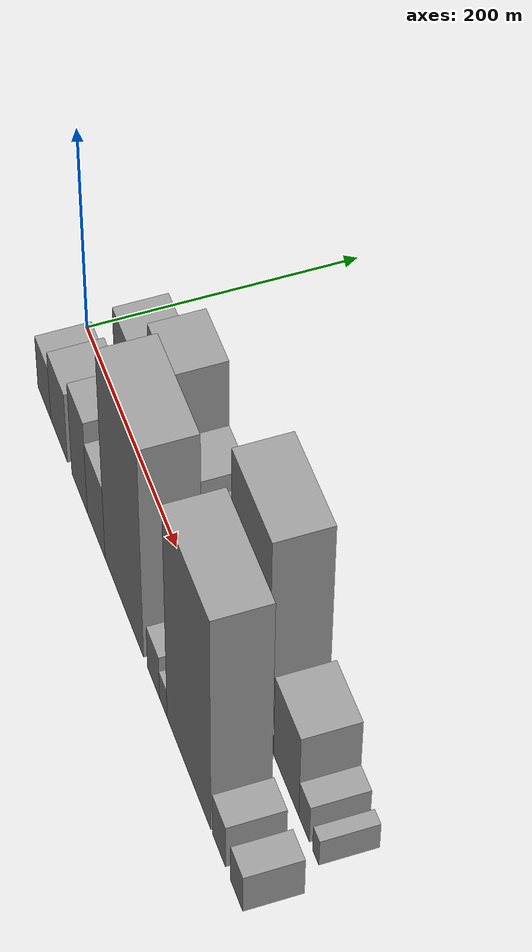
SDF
<sdf version="1.6">
 <world name="default">
  <scene>
   <sky><clouds><speed>12</speed></clouds></sky>
   <ambient>0.4 0.4 0.4 1</ambient>
   <background>0.7 0.7 0.7 1</background>
   <shadows>1</shadows>
  </scene>
  <gravity>0 0 -9.8066</gravity>
  <magnetic_field>6e-06 2.3e-05 -4.2e-05</magnetic_field>
  <physics default="0" name="default_physics" type="ode">
   <ode>
    <solver>
     <type>quick</type>
     <iters>10</iters>
     <sor>1.0</sor>
     <use_dynamic_moi_rescaling>0</use_dynamic_moi_rescaling>
    </solver>
    <constraints>
     <cfm>0</cfm>
     <erp>0.2</erp>
     <contact_max_correcting_vel>100</contact_max_correcting_vel>
     <contact_surface_layer>0.001</contact_surface_layer>
    </constraints>
   </ode>
   <max_step_size>0.004</max_step_size>
   <real_time_factor>1</real_time_factor>
   <real_time_update_rate>250</real_time_update_rate>
  </physics>
  <light name="sun" type="directional">
   <pose>0 0 10 0 0 0</pose>
   <diffuse>0.8 0.8 0.8 1</diffuse>
   <specular>0.2 0.2 0.2 1</specular>
   <attenuation>
    <range>1000</range>
    <constant>0.9</constant>
    <linear>0.01</linear>
    <quadratic>0.001</quadratic>
   </attenuation>
   <direction>-0.5 0.1 -0.9</direction>
  </light>
  <model name="building_1">
   <static>1</static>
   <pose>55.9267 27.5000 0 0.000000 0.000000 1.570796</pose>
   <link name="link">
    <pose>0 0 31.50 0 0 0</pose>
    <collision name="collision"><geometry><box><size>40.0000 31.8534 63.0000</size></box></geometry></collision>
    <visual name="visual">
     <cast_shadows>0</cast_shadows>
     <geometry><box><size>40.0000 31.8534 63.0000</size></box></geometry>
     <material>
      <script>
       <uri>model://grey_wall/materials/scripts</uri>
       <uri>model://grey_wall/materials/textures</uri>
       <name>vrc/grey_wall</name>
      </script>
     </material>
    </visual>
   </link>
  </model>
  <model name="building_2">
   <static>1</static>
   <pose>90.5737 27.5000 0 0.000000 0.000000 1.570796</pose>
   <link name="link">
    <pose>0 0 27.00 0 0 0</pose>
    <collision name="collision"><geometry><box><size>40.0000 29.4405 54.0000</size></box></geometry></collision>
    <visual name="visual">
     <cast_shadows>0</cast_shadows>
     <geometry><box><size>40.0000 29.4405 54.0000</size></box></geometry>
     <material>
      <script>
       <uri>model://grey_wall/materials/scripts</uri>
       <uri>model://grey_wall/materials/textures</uri>
       <name>vrc/grey_wall</name>
      </script>
     </material>
    </visual>
   </link>
  </model>
  <model name="building_3">
   <static>1</static>
   <pose>118.4894 27.5000 0 0.000000 0.000000 1.570796</pose>
   <link name="link">
    <pose>0 0 7.50 0 0 0</pose>
    <collision name="collision"><geometry><box><size>40.0000 6.3909 15.0000</size></box></geometry></collision>
    <visual name="visual">
     <cast_shadows>0</cast_shadows>
     <geometry><box><size>40.0000 6.3909 15.0000</size></box></geometry>
     <material>
      <script>
       <uri>model://grey_wall/materials/scripts</uri>
       <uri>model://grey_wall/materials/textures</uri>
       <name>vrc/grey_wall</name>
      </script>
     </material>
    </visual>
   </link>
  </model>
  <model name="building_4">
   <static>1</static>
   <pose>144.8247 27.5000 0 0.000000 0.000000 1.570796</pose>
   <link name="link">
    <pose>0 0 69.00 0 0 0</pose>
    <collision name="collision"><geometry><box><size>40.0000 46.2798 138.0000</size></box></geometry></collision>
    <visual name="visual">
     <cast_shadows>0</cast_shadows>
     <geometry><box><size>40.0000 46.2798 138.0000</size></box></geometry>
     <material>
      <script>
       <uri>model://grey_wall/materials/scripts</uri>
       <uri>model://grey_wall/materials/textures</uri>
       <name>vrc/grey_wall</name>
      </script>
     </material>
    </visual>
   </link>
  </model>
  <model name="building_5">
   <static>1</static>
   <pose>187.1168 27.5000 0 0.000000 0.000000 1.570796</pose>
   <link name="link">
    <pose>0 0 36.00 0 0 0</pose>
    <collision name="collision"><geometry><box><size>40.0000 38.3045 72.0000</size></box></geometry></collision>
    <visual name="visual">
     <cast_shadows>0</cast_shadows>
     <geometry><box><size>40.0000 38.3045 72.0000</size></box></geometry>
     <material>
      <script>
       <uri>model://grey_wall/materials/scripts</uri>
       <uri>model://grey_wall/materials/textures</uri>
       <name>vrc/grey_wall</name>
      </script>
     </material>
    </visual>
   </link>
  </model>
  <model name="building_6">
   <static>1</static>
   <pose>222.0264 27.5000 0 0.000000 0.000000 1.570796</pose>
   <link name="link">
    <pose>0 0 27.00 0 0 0</pose>
    <collision name="collision"><geometry><box><size>40.0000 31.5146 54.0000</size></box></geometry></collision>
    <visual name="visual">
     <cast_shadows>0</cast_shadows>
     <geometry><box><size>40.0000 31.5146 54.0000</size></box></geometry>
     <material>
      <script>
       <uri>model://grey_wall/materials/scripts</uri>
       <uri>model://grey_wall/materials/textures</uri>
       <name>vrc/grey_wall</name>
      </script>
     </material>
    </visual>
   </link>
  </model>
  <model name="building_7">
   <static>1</static>
   <pose>265.1516 27.5000 0 0.000000 0.000000 1.570796</pose>
   <link name="link">
    <pose>0 0 36.00 0 0 0</pose>
    <collision name="collision"><geometry><box><size>40.0000 36.7358 72.0000</size></box></geometry></collision>
    <visual name="visual">
     <cast_shadows>0</cast_shadows>
     <geometry><box><size>40.0000 36.7358 72.0000</size></box></geometry>
     <material>
      <script>
       <uri>model://grey_wall/materials/scripts</uri>
       <uri>model://grey_wall/materials/textures</uri>
       <name>vrc/grey_wall</name>
      </script>
     </material>
    </visual>
   </link>
  </model>
  <model name="building_8">
   <static>1</static>
   <pose>327.7672 27.5000 0 0.000000 0.000000 1.570796</pose>
   <link name="link">
    <pose>0 0 106.50 0 0 0</pose>
    <collision name="collision"><geometry><box><size>40.0000 74.4953 213.0000</size></box></geometry></collision>
    <visual name="visual">
     <cast_shadows>0</cast_shadows>
     <geometry><box><size>40.0000 74.4953 213.0000</size></box></geometry>
     <material>
      <script>
       <uri>model://grey_wall/materials/scripts</uri>
       <uri>model://grey_wall/materials/textures</uri>
       <name>vrc/grey_wall</name>
      </script>
     </material>
    </visual>
   </link>
  </model>
  <model name="building_9">
   <static>1</static>
   <pose>369.6242 27.5000 0 0.000000 0.000000 1.570796</pose>
   <link name="link">
    <pose>0 0 10.50 0 0 0</pose>
    <collision name="collision"><geometry><box><size>40.0000 9.2188 21.0000</size></box></geometry></collision>
    <visual name="visual">
     <cast_shadows>0</cast_shadows>
     <geometry><box><size>40.0000 9.2188 21.0000</size></box></geometry>
     <material>
      <script>
       <uri>model://grey_wall/materials/scripts</uri>
       <uri>model://grey_wall/materials/textures</uri>
       <name>vrc/grey_wall</name>
      </script>
     </material>
    </visual>
   </link>
  </model>
  <model name="building_10">
   <static>1</static>
   <pose>398.1830 27.5000 0 0.000000 0.000000 1.570796</pose>
   <link name="link">
    <pose>0 0 43.50 0 0 0</pose>
    <collision name="collision"><geometry><box><size>40.0000 47.8987 87.0000</size></box></geometry></collision>
    <visual name="visual">
     <cast_shadows>0</cast_shadows>
     <geometry><box><size>40.0000 47.8987 87.0000</size></box></geometry>
     <material>
      <script>
       <uri>model://grey_wall/materials/scripts</uri>
       <uri>model://grey_wall/materials/textures</uri>
       <name>vrc/grey_wall</name>
      </script>
     </material>
    </visual>
   </link>
  </model>
  <model name="building_11">
   <static>1</static>
   <pose>431.9772 27.5000 0 0.000000 0.000000 1.570796</pose>
   <link name="link">
    <pose>0 0 19.50 0 0 0</pose>
    <collision name="collision"><geometry><box><size>40.0000 19.6897 39.0000</size></box></geometry></collision>
    <visual name="visual">
     <cast_shadows>0</cast_shadows>
     <geometry><box><size>40.0000 19.6897 39.0000</size></box></geometry>
     <material>
      <script>
       <uri>model://grey_wall/materials/scripts</uri>
       <uri>model://grey_wall/materials/textures</uri>
       <name>vrc/grey_wall</name>
      </script>
     </material>
    </visual>
   </link>
  </model>
  <model name="building_12">
   <static>1</static>
   <pose>453.6052 27.5000 0 0.000000 0.000000 1.570796</pose>
   <link name="link">
    <pose>0 0 13.50 0 0 0</pose>
    <collision name="collision"><geometry><box><size>40.0000 11.5662 27.0000</size></box></geometry></collision>
    <visual name="visual">
     <cast_shadows>0</cast_shadows>
     <geometry><box><size>40.0000 11.5662 27.0000</size></box></geometry>
     <material>
      <script>
       <uri>model://grey_wall/materials/scripts</uri>
       <uri>model://grey_wall/materials/textures</uri>
       <name>vrc/grey_wall</name>
      </script>
     </material>
    </visual>
   </link>
  </model>
  <model name="building_13">
   <static>1</static>
   <pose>55.3529 -27.5000 0 0.000000 0.000000 1.570796</pose>
   <link name="link">
    <pose>0 0 27.00 0 0 0</pose>
    <collision name="collision"><geometry><box><size>40.0000 30.7059 54.0000</size></box></geometry></collision>
    <visual name="visual">
     <cast_shadows>0</cast_shadows>
     <geometry><box><size>40.0000 30.7059 54.0000</size></box></geometry>
     <material>
      <script>
       <uri>model://grey_wall/materials/scripts</uri>
       <uri>model://grey_wall/materials/textures</uri>
       <name>vrc/grey_wall</name>
      </script>
     </material>
    </visual>
   </link>
  </model>
  <model name="building_14">
   <static>1</static>
   <pose>90.0154 -27.5000 0 0.000000 0.000000 1.570796</pose>
   <link name="link">
    <pose>0 0 36.00 0 0 0</pose>
    <collision name="collision"><geometry><box><size>40.0000 38.6189 72.0000</size></box></geometry></collision>
    <visual name="visual">
     <cast_shadows>0</cast_shadows>
     <geometry><box><size>40.0000 38.6189 72.0000</size></box></geometry>
     <material>
      <script>
       <uri>model://grey_wall/materials/scripts</uri>
       <uri>model://grey_wall/materials/textures</uri>
       <name>vrc/grey_wall</name>
      </script>
     </material>
    </visual>
   </link>
  </model>
  <model name="building_15">
   <static>1</static>
   <pose>136.9796 -27.5000 0 0.000000 0.000000 1.570796</pose>
   <link name="link">
    <pose>0 0 48.00 0 0 0</pose>
    <collision name="collision"><geometry><box><size>40.0000 35.3094 96.0000</size></box></geometry></collision>
    <visual name="visual">
     <cast_shadows>0</cast_shadows>
     <geometry><box><size>40.0000 35.3094 96.0000</size></box></geometry>
     <material>
      <script>
       <uri>model://grey_wall/materials/scripts</uri>
       <uri>model://grey_wall/materials/textures</uri>
       <name>vrc/grey_wall</name>
      </script>
     </material>
    </visual>
   </link>
  </model>
  <model name="building_16">
   <static>1</static>
   <pose>174.3470 -27.5000 0 0.000000 0.000000 1.570796</pose>
   <link name="link">
    <pose>0 0 37.50 0 0 0</pose>
    <collision name="collision"><geometry><box><size>40.0000 39.4255 75.0000</size></box></geometry></collision>
    <visual name="visual">
     <cast_shadows>0</cast_shadows>
     <geometry><box><size>40.0000 39.4255 75.0000</size></box></geometry>
     <material>
      <script>
       <uri>model://grey_wall/materials/scripts</uri>
       <uri>model://grey_wall/materials/textures</uri>
       <name>vrc/grey_wall</name>
      </script>
     </material>
    </visual>
   </link>
  </model>
  <model name="building_17">
   <static>1</static>
   <pose>235.5237 -27.5000 0 0.000000 0.000000 1.570796</pose>
   <link name="link">
    <pose>0 0 108.00 0 0 0</pose>
    <collision name="collision"><geometry><box><size>40.0000 82.9277 216.0000</size></box></geometry></collision>
    <visual name="visual">
     <cast_shadows>0</cast_shadows>
     <geometry><box><size>40.0000 82.9277 216.0000</size></box></geometry>
     <material>
      <script>
       <uri>model://grey_wall/materials/scripts</uri>
       <uri>model://grey_wall/materials/textures</uri>
       <name>vrc/grey_wall</name>
      </script>
     </material>
    </visual>
   </link>
  </model>
  <model name="building_18">
   <static>1</static>
   <pose>297.6559 -27.5000 0 0.000000 0.000000 1.570796</pose>
   <link name="link">
    <pose>0 0 22.50 0 0 0</pose>
    <collision name="collision"><geometry><box><size>40.0000 25.3367 45.0000</size></box></geometry></collision>
    <visual name="visual">
     <cast_shadows>0</cast_shadows>
     <geometry><box><size>40.0000 25.3367 45.0000</size></box></geometry>
     <material>
      <script>
       <uri>model://grey_wall/materials/scripts</uri>
       <uri>model://grey_wall/materials/textures</uri>
       <name>vrc/grey_wall</name>
      </script>
     </material>
    </visual>
   </link>
  </model>
  <model name="building_19">
   <static>1</static>
   <pose>318.1983 -27.5000 0 0.000000 0.000000 1.570796</pose>
   <link name="link">
    <pose>0 0 15.00 0 0 0</pose>
    <collision name="collision"><geometry><box><size>40.0000 15.7481 30.0000</size></box></geometry></collision>
    <visual name="visual">
     <cast_shadows>0</cast_shadows>
     <geometry><box><size>40.0000 15.7481 30.0000</size></box></geometry>
     <material>
      <script>
       <uri>model://grey_wall/materials/scripts</uri>
       <uri>model://grey_wall/materials/textures</uri>
       <name>vrc/grey_wall</name>
      </script>
     </material>
    </visual>
   </link>
  </model>
  <model name="building_20">
   <static>1</static>
   <pose>370.0122 -27.5000 0 0.000000 0.000000 1.570796</pose>
   <link name="link">
    <pose>0 0 112.50 0 0 0</pose>
    <collision name="collision"><geometry><box><size>40.0000 87.8795 225.0000</size></box></geometry></collision>
    <visual name="visual">
     <cast_shadows>0</cast_shadows>
     <geometry><box><size>40.0000 87.8795 225.0000</size></box></geometry>
     <material>
      <script>
       <uri>model://grey_wall/materials/scripts</uri>
       <uri>model://grey_wall/materials/textures</uri>
       <name>vrc/grey_wall</name>
      </script>
     </material>
    </visual>
   </link>
  </model>
  <model name="building_21">
   <static>1</static>
   <pose>429.5561 -27.5000 0 0.000000 0.000000 1.570796</pose>
   <link name="link">
    <pose>0 0 22.50 0 0 0</pose>
    <collision name="collision"><geometry><box><size>40.0000 25.2084 45.0000</size></box></geometry></collision>
    <visual name="visual">
     <cast_shadows>0</cast_shadows>
     <geometry><box><size>40.0000 25.2084 45.0000</size></box></geometry>
     <material>
      <script>
       <uri>model://grey_wall/materials/scripts</uri>
       <uri>model://grey_wall/materials/textures</uri>
       <name>vrc/grey_wall</name>
      </script>
     </material>
    </visual>
   </link>
  </model>
  <model name="building_22">
   <static>1</static>
   <pose>463.7696 -27.5000 0 0.000000 0.000000 1.570796</pose>
   <link name="link">
    <pose>0 0 19.50 0 0 0</pose>
    <collision name="collision"><geometry><box><size>40.0000 23.2187 39.0000</size></box></geometry></collision>
    <visual name="visual">
     <cast_shadows>0</cast_shadows>
     <geometry><box><size>40.0000 23.2187 39.0000</size></box></geometry>
     <material>
      <script>
       <uri>model://grey_wall/materials/scripts</uri>
       <uri>model://grey_wall/materials/textures</uri>
       <name>vrc/grey_wall</name>
      </script>
     </material>
    </visual>
   </link>
  </model>
 </world>
</sdf>
